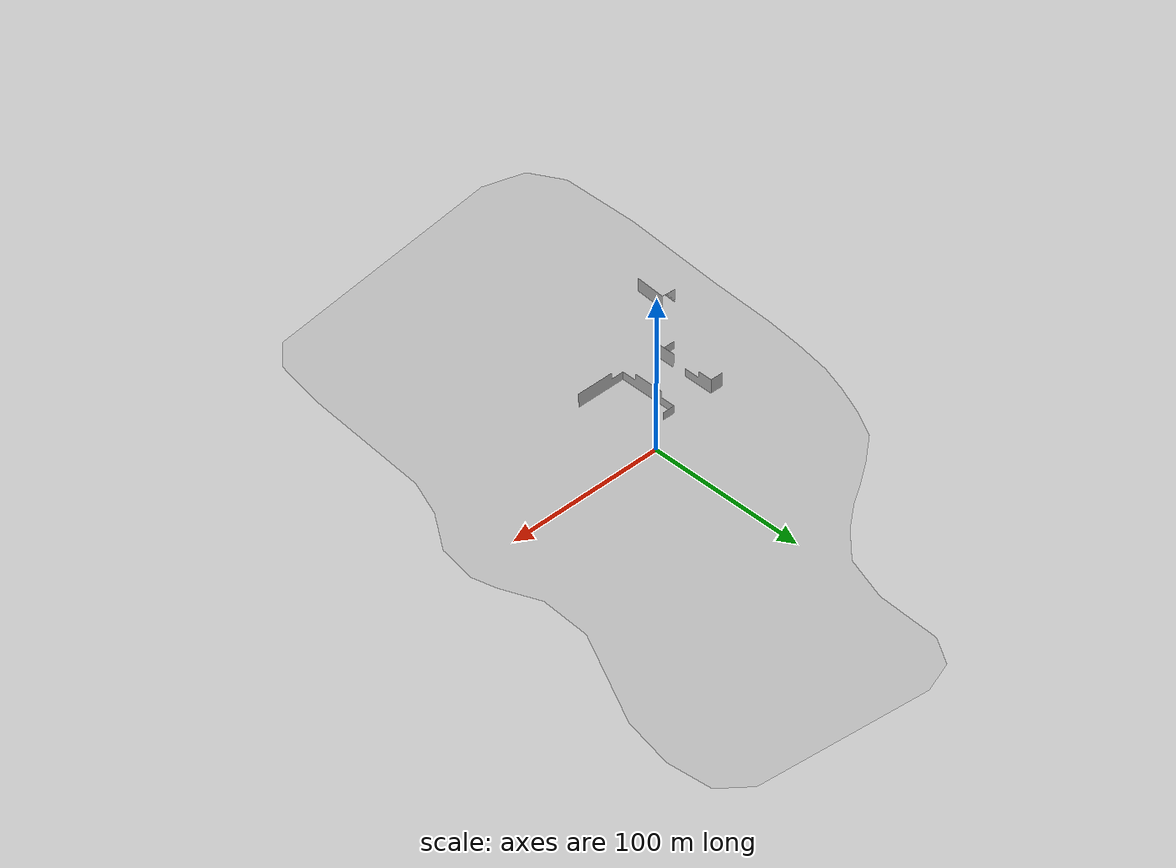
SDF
<?xml version="1.0" ?>
<sdf version="1.5">

<world name="city_1">
<gui fullscreen='0'>
  <camera name='city_camera'>
    <pose frame=''>
      -0.065965 0.276379 1005.72 2e-06 1.5538 1.5962
    </pose>
  </camera>
</gui>
<include>
  <uri>model://sun</uri>
</include>
<plugin name='rndf_gazebo_plugin0' filename='librndf_gazebo_plugin0.so.0.0.1'>
  <rndf>../example/mcity.rndf</rndf>
  <lanes>true</lanes>
  <waypoints>true</waypoints>
  <junctions>true</junctions>
  <waypoints_material>Gazebo/White</waypoints_material>
  <origin>10 65 0.0</origin>
</plugin>

  <model name="groundPlane_2">
    <static>1</static>
    <pose frame=''>0 0 0 0 0 0</pose>
    <link name='groundPlane_2_link'>
      <collision name='groundPlane_2'>
        <geometry>
          <plane>
            <normal>0 0 1</normal>
            <size>424.128819 424.128819</size>
          </plane>
        </geometry>
        <surface>
          <friction>
            <ode>
              <mu>100</mu>
              <mu2>50</mu2>
            </ode>
            <torsional>
              <ode/>
            </torsional>
          </friction>
          <contact>
            <ode/>
          </contact>
          <bounce/>
        </surface>
        <max_contacts>10</max_contacts>
      </collision>
      <visual name='groundPlane_2'>
        <cast_shadows>0</cast_shadows>
        <geometry>
          <plane>
            <normal>0 0 1</normal>
            <size>424.128819 424.128819</size>
          </plane>
        </geometry>
        <material>
          <script>
            <uri>file://media/materials/scripts/gazebo.material</uri>
            <name>Gazebo/Grey</name>
          </script>
        </material>
        <transparency>1</transparency>
      </visual>
      <self_collide>0</self_collide>
      <kinematic>0</kinematic>
    </link>
  </model>

<model name="MCityMeshes">
  <pose>3 0 -0.1  0 0 0</pose>
  <static>true</static>
  <link name="body">
    <visual name="visual">
      <geometry>
        <mesh>
          <uri>file://../meshes/MCityNoRoads.obj</uri>
          <scale>0.12 0.12 0.12</scale>
        </mesh>
      </geometry>
    </visual>
  </link>
</model>

</world>

</sdf>
